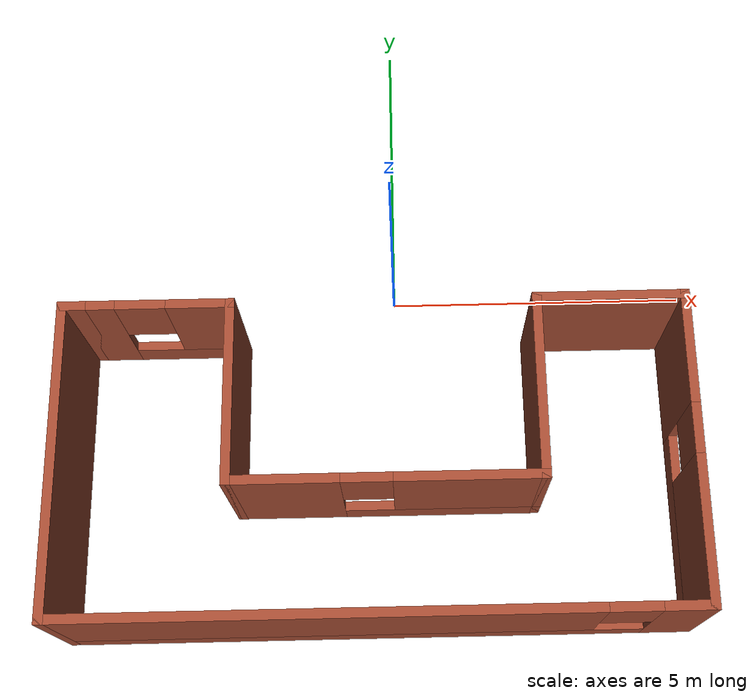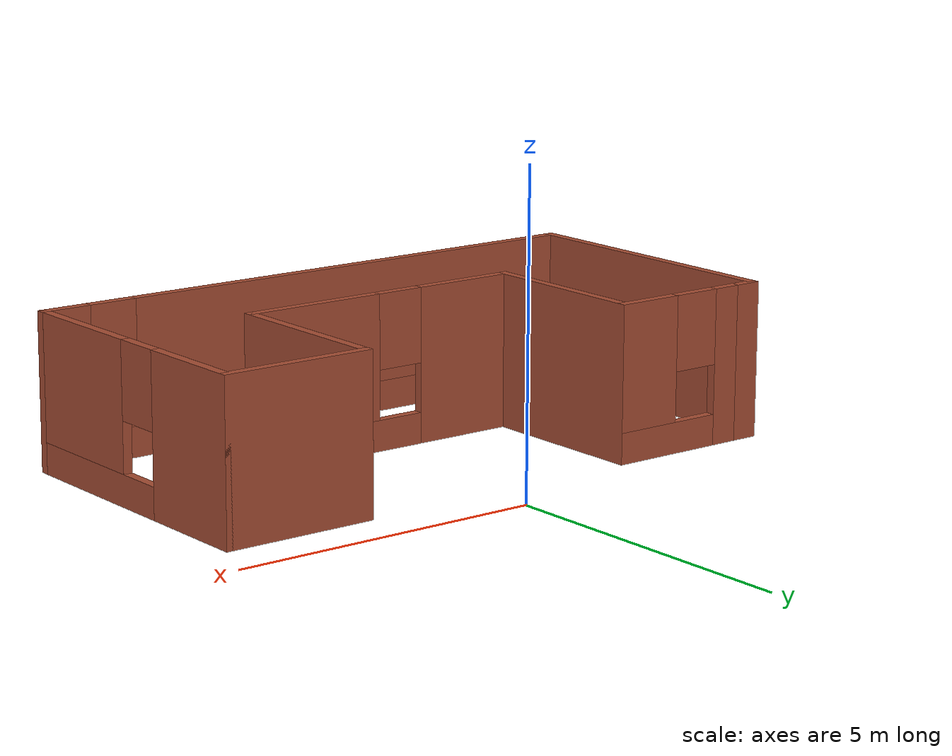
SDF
<?xml version='1.0'?>
<sdf version='1.6'>
  <model name='Home'>
    <pose frame=''>-0.305 -3.255 0 0 -0 0</pose>
    <link name='Wall_0'>
      <pose frame=''>-3.45 2.425 0 0 -0 0</pose>
      <visual name='Wall_0_Visual_0'>
        <pose frame=''>-0.9475 0 1.25 0 -0 0</pose>
        <geometry>
          <box>
            <size>0.605 0.15 2.5</size>
          </box>
        </geometry>
        <material>
          <script>
            <uri>file://media/materials/scripts/gazebo.material</uri>
            <name>Gazebo/Bricks</name>
          </script>
          <ambient>1 1 1 1</ambient>
        </material>
        <meta>
          <layer>0</layer>
        </meta>
      </visual>
      <collision name='Wall_0_Collision_0'>
        <geometry>
          <box>
            <size>0.605 0.15 2.5</size>
          </box>
        </geometry>
        <pose frame=''>-0.9475 0 1.25 0 -0 0</pose>
      </collision>
      <visual name='Wall_0_Visual_1'>
        <pose frame=''>0.3025 0 0.25 0 -0 0</pose>
        <geometry>
          <box>
            <size>1.895 0.15 0.5</size>
          </box>
        </geometry>
        <material>
          <script>
            <uri>file://media/materials/scripts/gazebo.material</uri>
            <name>Gazebo/Bricks</name>
          </script>
          <ambient>1 1 1 1</ambient>
        </material>
        <meta>
          <layer>0</layer>
        </meta>
      </visual>
      <collision name='Wall_0_Collision_1'>
        <geometry>
          <box>
            <size>1.895 0.15 0.5</size>
          </box>
        </geometry>
        <pose frame=''>0.3025 0 0.25 0 -0 0</pose>
      </collision>
      <visual name='Wall_0_Visual_2'>
        <pose frame=''>0.7025 0 1.5 0 -0 0</pose>
        <geometry>
          <box>
            <size>1.095 0.15 2</size>
          </box>
        </geometry>
        <material>
          <script>
            <uri>file://media/materials/scripts/gazebo.material</uri>
            <name>Gazebo/Bricks</name>
          </script>
          <ambient>1 1 1 1</ambient>
        </material>
        <meta>
          <layer>0</layer>
        </meta>
      </visual>
      <collision name='Wall_0_Collision_2'>
        <geometry>
          <box>
            <size>1.095 0.15 2</size>
          </box>
        </geometry>
        <pose frame=''>0.7025 0 1.5 0 -0 0</pose>
      </collision>
      <visual name='Wall_0_Visual_3'>
        <pose frame=''>-0.245 0 1.9 0 -0 0</pose>
        <geometry>
          <box>
            <size>0.8 0.15 1.2</size>
          </box>
        </geometry>
        <material>
          <script>
            <uri>file://media/materials/scripts/gazebo.material</uri>
            <name>Gazebo/Bricks</name>
          </script>
          <ambient>1 1 1 1</ambient>
        </material>
        <meta>
          <layer>0</layer>
        </meta>
      </visual>
      <collision name='Wall_0_Collision_3'>
        <geometry>
          <box>
            <size>0.8 0.15 1.2</size>
          </box>
        </geometry>
        <pose frame=''>-0.245 0 1.9 0 -0 0</pose>
      </collision>
    </link>
    <link name='Wall_1'>
      <collision name='Wall_1_Collision'>
        <geometry>
          <box>
            <size>3 0.15 2.5</size>
          </box>
        </geometry>
        <pose frame=''>0 0 1.25 0 -0 0</pose>
      </collision>
      <visual name='Wall_1_Visual'>
        <pose frame=''>0 0 1.25 0 -0 0</pose>
        <geometry>
          <box>
            <size>3 0.15 2.5</size>
          </box>
        </geometry>
        <material>
          <script>
            <uri>file://media/materials/scripts/gazebo.material</uri>
            <name>Gazebo/Bricks</name>
          </script>
          <ambient>1 1 1 1</ambient>
        </material>
        <meta>
          <layer>0</layer>
        </meta>
      </visual>
      <pose frame=''>-2.275 1 0 0 0 -1.5708</pose>
    </link>
    <link name='Wall_2'>
      <pose frame=''>0.15 -0.425 0 0 -0 0</pose>
      <visual name='Wall_2_Visual_0'>
        <pose frame=''>-1.5975 0 1.25 0 -0 0</pose>
        <geometry>
          <box>
            <size>1.805 0.15 2.5</size>
          </box>
        </geometry>
        <material>
          <script>
            <uri>file://media/materials/scripts/gazebo.material</uri>
            <name>Gazebo/Bricks</name>
          </script>
          <ambient>1 1 1 1</ambient>
        </material>
        <meta>
          <layer>0</layer>
        </meta>
      </visual>
      <collision name='Wall_2_Collision_0'>
        <geometry>
          <box>
            <size>1.805 0.15 2.5</size>
          </box>
        </geometry>
        <pose frame=''>-1.5975 0 1.25 0 -0 0</pose>
      </collision>
      <visual name='Wall_2_Visual_1'>
        <pose frame=''>0.9025 0 0.25 0 -0 0</pose>
        <geometry>
          <box>
            <size>3.195 0.15 0.5</size>
          </box>
        </geometry>
        <material>
          <script>
            <uri>file://media/materials/scripts/gazebo.material</uri>
            <name>Gazebo/Bricks</name>
          </script>
          <ambient>1 1 1 1</ambient>
        </material>
        <meta>
          <layer>0</layer>
        </meta>
      </visual>
      <collision name='Wall_2_Collision_1'>
        <geometry>
          <box>
            <size>3.195 0.15 0.5</size>
          </box>
        </geometry>
        <pose frame=''>0.9025 0 0.25 0 -0 0</pose>
      </collision>
      <visual name='Wall_2_Visual_2'>
        <pose frame=''>1.3025 0 1.5 0 -0 0</pose>
        <geometry>
          <box>
            <size>2.395 0.15 2</size>
          </box>
        </geometry>
        <material>
          <script>
            <uri>file://media/materials/scripts/gazebo.material</uri>
            <name>Gazebo/Bricks</name>
          </script>
          <ambient>1 1 1 1</ambient>
        </material>
        <meta>
          <layer>0</layer>
        </meta>
      </visual>
      <collision name='Wall_2_Collision_2'>
        <geometry>
          <box>
            <size>2.395 0.15 2</size>
          </box>
        </geometry>
        <pose frame=''>1.3025 0 1.5 0 -0 0</pose>
      </collision>
      <visual name='Wall_2_Visual_3'>
        <pose frame=''>-0.295 0 1.9 0 -0 0</pose>
        <geometry>
          <box>
            <size>0.8 0.15 1.2</size>
          </box>
        </geometry>
        <material>
          <script>
            <uri>file://media/materials/scripts/gazebo.material</uri>
            <name>Gazebo/Bricks</name>
          </script>
          <ambient>1 1 1 1</ambient>
        </material>
        <meta>
          <layer>0</layer>
        </meta>
      </visual>
      <collision name='Wall_2_Collision_3'>
        <geometry>
          <box>
            <size>0.8 0.15 1.2</size>
          </box>
        </geometry>
        <pose frame=''>-0.295 0 1.9 0 -0 0</pose>
      </collision>
    </link>
    <link name='Wall_3'>
      <collision name='Wall_3_Collision'>
        <geometry>
          <box>
            <size>3 0.15 2.5</size>
          </box>
        </geometry>
        <pose frame=''>0 0 1.25 0 -0 0</pose>
      </collision>
      <visual name='Wall_3_Visual'>
        <pose frame=''>0 0 1.25 0 -0 0</pose>
        <geometry>
          <box>
            <size>3 0.15 2.5</size>
          </box>
        </geometry>
        <material>
          <script>
            <uri>file://media/materials/scripts/gazebo.material</uri>
            <name>Gazebo/Bricks</name>
          </script>
          <ambient>1 1 1 1</ambient>
        </material>
        <meta>
          <layer>0</layer>
        </meta>
      </visual>
      <pose frame=''>2.575 1 0 0 -0 1.5708</pose>
    </link>
    <link name='Wall_4'>
      <collision name='Wall_4_Collision'>
        <geometry>
          <box>
            <size>2.5 0.15 2.5</size>
          </box>
        </geometry>
        <pose frame=''>0 0 1.25 0 -0 0</pose>
      </collision>
      <visual name='Wall_4_Visual'>
        <pose frame=''>0 0 1.25 0 -0 0</pose>
        <geometry>
          <box>
            <size>2.5 0.15 2.5</size>
          </box>
        </geometry>
        <material>
          <script>
            <uri>file://media/materials/scripts/gazebo.material</uri>
            <name>Gazebo/Bricks</name>
          </script>
          <ambient>1 1 1 1</ambient>
        </material>
        <meta>
          <layer>0</layer>
        </meta>
      </visual>
      <pose frame=''>3.75 2.425 0 0 -0 0</pose>
    </link>
    <link name='Wall_5'>
      <pose frame=''>4.925 0 0 0 0 -1.5708</pose>
      <visual name='Wall_5_Visual_0'>
        <pose frame=''>-1.5725 0 1.25 0 -0 0</pose>
        <geometry>
          <box>
            <size>1.855 0.15 2.5</size>
          </box>
        </geometry>
        <material>
          <script>
            <uri>file://media/materials/scripts/gazebo.material</uri>
            <name>Gazebo/Bricks</name>
          </script>
          <ambient>1 1 1 1</ambient>
        </material>
        <meta>
          <layer>0</layer>
        </meta>
      </visual>
      <collision name='Wall_5_Collision_0'>
        <geometry>
          <box>
            <size>1.855 0.15 2.5</size>
          </box>
        </geometry>
        <pose frame=''>-1.5725 0 1.25 0 -0 0</pose>
      </collision>
      <visual name='Wall_5_Visual_1'>
        <pose frame=''>0.9275 0 0.25 0 -0 0</pose>
        <geometry>
          <box>
            <size>3.145 0.15 0.5</size>
          </box>
        </geometry>
        <material>
          <script>
            <uri>file://media/materials/scripts/gazebo.material</uri>
            <name>Gazebo/Bricks</name>
          </script>
          <ambient>1 1 1 1</ambient>
        </material>
        <meta>
          <layer>0</layer>
        </meta>
      </visual>
      <collision name='Wall_5_Collision_1'>
        <geometry>
          <box>
            <size>3.145 0.15 0.5</size>
          </box>
        </geometry>
        <pose frame=''>0.9275 0 0.25 0 -0 0</pose>
      </collision>
      <visual name='Wall_5_Visual_2'>
        <pose frame=''>1.3275 0 1.5 0 -0 0</pose>
        <geometry>
          <box>
            <size>2.345 0.15 2</size>
          </box>
        </geometry>
        <material>
          <script>
            <uri>file://media/materials/scripts/gazebo.material</uri>
            <name>Gazebo/Bricks</name>
          </script>
          <ambient>1 1 1 1</ambient>
        </material>
        <meta>
          <layer>0</layer>
        </meta>
      </visual>
      <collision name='Wall_5_Collision_2'>
        <geometry>
          <box>
            <size>2.345 0.15 2</size>
          </box>
        </geometry>
        <pose frame=''>1.3275 0 1.5 0 -0 0</pose>
      </collision>
      <visual name='Wall_5_Visual_3'>
        <pose frame=''>-0.245 0 1.9 0 -0 0</pose>
        <geometry>
          <box>
            <size>0.8 0.15 1.2</size>
          </box>
        </geometry>
        <material>
          <script>
            <uri>file://media/materials/scripts/gazebo.material</uri>
            <name>Gazebo/Bricks</name>
          </script>
          <ambient>1 1 1 1</ambient>
        </material>
        <meta>
          <layer>0</layer>
        </meta>
      </visual>
      <collision name='Wall_5_Collision_3'>
        <geometry>
          <box>
            <size>0.8 0.15 1.2</size>
          </box>
        </geometry>
        <pose frame=''>-0.245 0 1.9 0 -0 0</pose>
      </collision>
    </link>
    <link name='Wall_6'>
      <pose frame=''>0 -2.425 0 0 -0 3.14159</pose>
      <visual name='Wall_6_Visual_0'>
        <pose frame=''>-4.5875 0 1.25 0 -0 0</pose>
        <geometry>
          <box>
            <size>0.825 0.15 2.5</size>
          </box>
        </geometry>
        <material>
          <script>
            <uri>file://media/materials/scripts/gazebo.material</uri>
            <name>Gazebo/Bricks</name>
          </script>
          <ambient>1 1 1 1</ambient>
        </material>
        <meta>
          <layer>0</layer>
        </meta>
      </visual>
      <collision name='Wall_6_Collision_0'>
        <geometry>
          <box>
            <size>0.825 0.15 2.5</size>
          </box>
        </geometry>
        <pose frame=''>-4.5875 0 1.25 0 -0 0</pose>
      </collision>
      <visual name='Wall_6_Visual_1'>
        <pose frame=''>0.4125 0 0.25 0 -0 0</pose>
        <geometry>
          <box>
            <size>9.175 0.15 0.5</size>
          </box>
        </geometry>
        <material>
          <script>
            <uri>file://media/materials/scripts/gazebo.material</uri>
            <name>Gazebo/Bricks</name>
          </script>
          <ambient>1 1 1 1</ambient>
        </material>
        <meta>
          <layer>0</layer>
        </meta>
      </visual>
      <collision name='Wall_6_Collision_1'>
        <geometry>
          <box>
            <size>9.175 0.15 0.5</size>
          </box>
        </geometry>
        <pose frame=''>0.4125 0 0.25 0 -0 0</pose>
      </collision>
      <visual name='Wall_6_Visual_2'>
        <pose frame=''>0.8125 0 1.5 0 -0 0</pose>
        <geometry>
          <box>
            <size>8.375 0.15 2</size>
          </box>
        </geometry>
        <material>
          <script>
            <uri>file://media/materials/scripts/gazebo.material</uri>
            <name>Gazebo/Bricks</name>
          </script>
          <ambient>1 1 1 1</ambient>
        </material>
        <meta>
          <layer>0</layer>
        </meta>
      </visual>
      <collision name='Wall_6_Collision_2'>
        <geometry>
          <box>
            <size>8.375 0.15 2</size>
          </box>
        </geometry>
        <pose frame=''>0.8125 0 1.5 0 -0 0</pose>
      </collision>
      <visual name='Wall_6_Visual_3'>
        <pose frame=''>-3.775 0 1.9 0 -0 0</pose>
        <geometry>
          <box>
            <size>0.8 0.15 1.2</size>
          </box>
        </geometry>
        <material>
          <script>
            <uri>file://media/materials/scripts/gazebo.material</uri>
            <name>Gazebo/Bricks</name>
          </script>
          <ambient>1 1 1 1</ambient>
        </material>
        <meta>
          <layer>0</layer>
        </meta>
      </visual>
      <collision name='Wall_6_Collision_3'>
        <geometry>
          <box>
            <size>0.8 0.15 1.2</size>
          </box>
        </geometry>
        <pose frame=''>-3.775 0 1.9 0 -0 0</pose>
      </collision>
    </link>
    <link name='Wall_7'>
      <collision name='Wall_7_Collision'>
        <geometry>
          <box>
            <size>5 0.15 2.5</size>
          </box>
        </geometry>
        <pose frame=''>0 0 1.25 0 -0 0</pose>
      </collision>
      <visual name='Wall_7_Visual'>
        <pose frame=''>0 0 1.25 0 -0 0</pose>
        <geometry>
          <box>
            <size>5 0.15 2.5</size>
          </box>
        </geometry>
        <material>
          <script>
            <uri>file://media/materials/scripts/gazebo.material</uri>
            <name>Gazebo/Bricks</name>
          </script>
          <ambient>1 1 1 1</ambient>
        </material>
        <meta>
          <layer>0</layer>
        </meta>
      </visual>
      <pose frame=''>-4.925 0 0 0 -0 1.5708</pose>
    </link>
    <link name='Wall_8'>
      <collision name='Wall_8_Collision'>
        <geometry>
          <box>
            <size>0.45 0.15 2.5</size>
          </box>
        </geometry>
        <pose frame=''>0 0 1.25 0 -0 0</pose>
      </collision>
      <visual name='Wall_8_Visual'>
        <pose frame=''>0 0 1.25 0 -0 0</pose>
        <geometry>
          <box>
            <size>0.45 0.15 2.5</size>
          </box>
        </geometry>
        <material>
          <script>
            <uri>file://media/materials/scripts/gazebo.material</uri>
            <name>Gazebo/Bricks</name>
          </script>
          <ambient>1 1 1 1</ambient>
        </material>
        <meta>
          <layer>0</layer>
        </meta>
      </visual>
      <pose frame=''>-4.775 2.425 0 0 -0 0</pose>
    </link>
    <static>1</static>
  </model>
</sdf>
